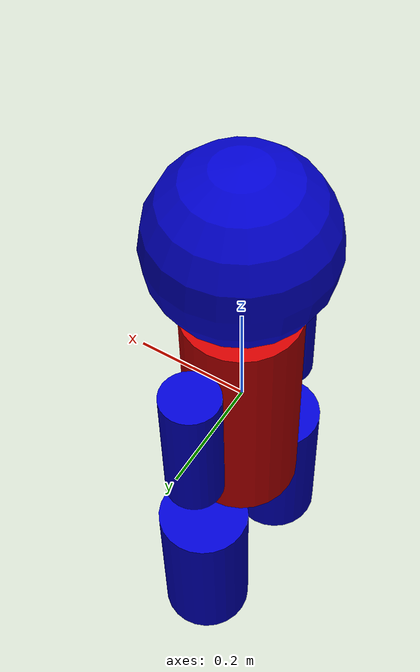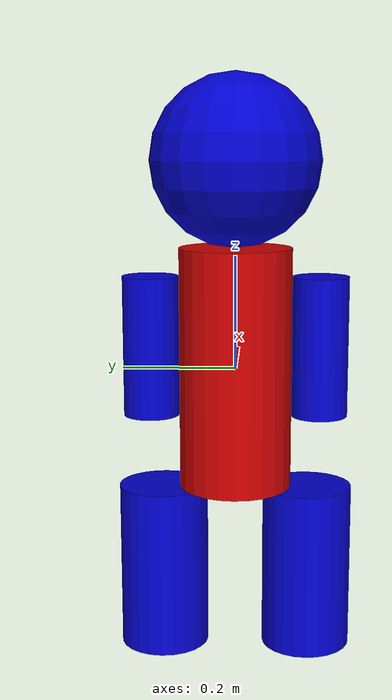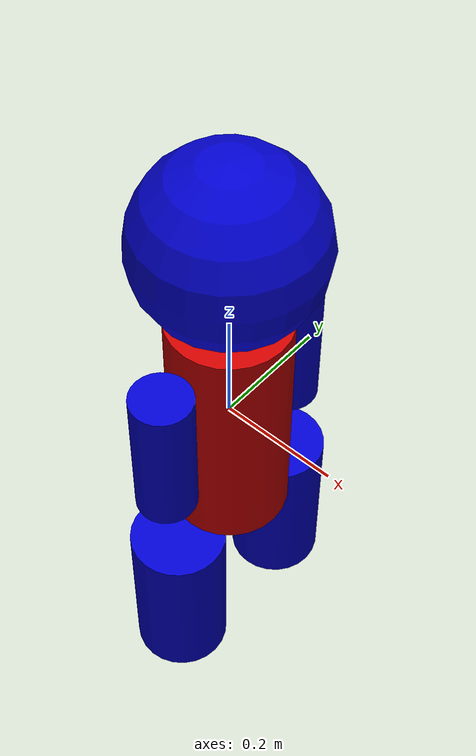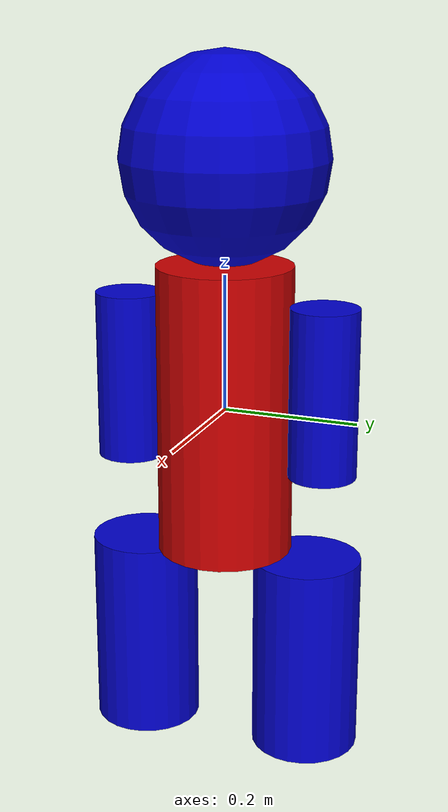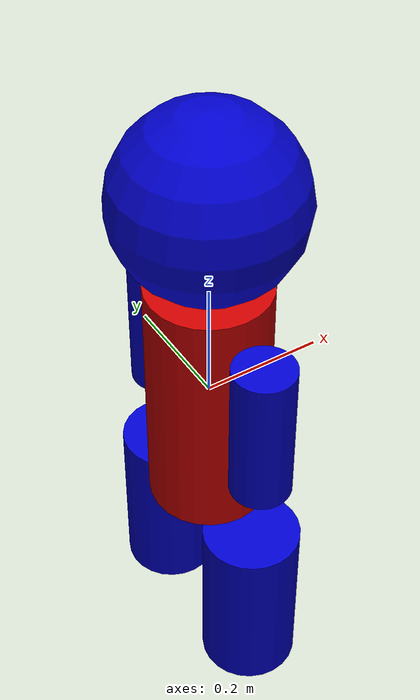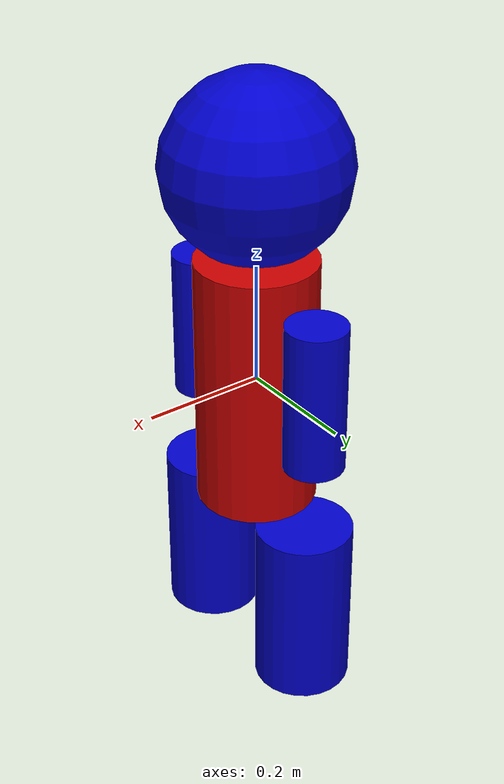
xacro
<?xml version="1.0"?>
<robot name="humanoid" xmlns:xacro="http://www.ros.org/wiki/xacro">

    <xacro:property name="body_length" value="0.430"/>
    <xacro:property name="body_radius" value="0.1"/>
    <xacro:property name="head_radius" value="0.15"/>
    <xacro:property name="arm_length" value="0.25"/>
    <xacro:property name="arm_radius" value="0.05"/>
    <xacro:property name="leg_length" value="0.3"/>
    <xacro:property name="leg_radius" value="0.08"/>

    <link name="base_link">
        <visual>
            <geometry>
                <cylinder length="${body_length}" radius="${body_radius}"/>
            </geometry>
            <material name="red">
                <color rgba="0.8 0 0 1"/>
            </material>
        </visual>
        <collision>
            <geometry>
                <cylinder length="${body_length}" radius="${body_radius}"/>
            </geometry>
        </collision>
    </link>

    <link name="head">
        <visual>
            <geometry>
                <sphere radius="${head_radius}"/>
            </geometry>
            <material name="blue">
                <color rgba="0 0 0.8 1"/>
            </material>
        </visual>
    </link>
    <joint name="head_swivel" type="fixed">
        <parent link="base_link"/>
        <child link="head"/>
        <origin xyz="0 0 ${body_length/2 + head_radius}"/>
    </joint>

    <xacro:macro name="arm" params="arm_name reflect_y">
        <link name="${arm_name}_pivot"/>
        <joint name="${arm_name}_side_to_side" type="revolute">
            <parent link="base_link"/>
            <child link="${arm_name}_pivot"/>
            <origin xyz="0 ${reflect_y * (body_radius + arm_radius)} ${body_length/2 - arm_radius}"/>
            <axis xyz="1 0 0"/>
            <limit lower="0" upper="3.14" effort="10" velocity="1"/>
        </joint>
        <link name="${arm_name}">
            <visual>
                <origin xyz="0 0 -${arm_length/2}"/>
                <geometry>
                    <cylinder length="${arm_length}" radius="${arm_radius}"/>
                </geometry>
                <material name="blue">
                    <color rgba="0 0 0.8 1"/>
                </material>
            </visual>
        </link>
        <joint name="${arm_name}_front_to_back" type="revolute">
            <parent link="${arm_name}_pivot"/>
            <child link="${arm_name}"/>
            <origin xyz="0 0 0"/>
            <axis xyz="0 1 0"/>
            <limit lower="-1.57" upper="1.57" effort="10" velocity="1"/>
        </joint>
    </xacro:macro>

    <xacro:macro name="leg" params="leg_name reflect_y">
        <link name="${leg_name}_pivot"/>
        <joint name="${leg_name}_side_to_side" type="continuous">
            <parent link="base_link"/>
            <child link="${leg_name}_pivot"/>
            <origin xyz="0 ${reflect_y * (body_radius/2 + leg_radius)} -${body_length/2}"/>
            <axis xyz="1 0 0"/>
        </joint>
        <link name="${leg_name}">
            <visual>
                <origin xyz="0 0 -${leg_length/2}"/>
                <geometry>
                    <cylinder length="${leg_length}" radius="${leg_radius}"/>
                </geometry>
                <material name="blue">
                    <color rgba="0 0 0.8 1"/>
                </material>
            </visual>
            <collision>
                <origin xyz="0 0 -${leg_length/2}"/>
                <geometry>
                    <cylinder length="${leg_length}" radius="${leg_radius}"/>
                </geometry>
            </collision>
        </link>
        <joint name="${leg_name}_front_to_back" type="continuous">
            <parent link="${leg_name}_pivot"/>
            <child link="${leg_name}"/>
            <origin xyz="0 0 0"/>
            <axis xyz="0 1 0"/>
        </joint>
    </xacro:macro>

    <xacro:arm arm_name="left_arm" reflect_y="1"/>
    <xacro:arm arm_name="right_arm" reflect_y="-1"/>
    <xacro:leg leg_name="left_leg" reflect_y="1"/>
    <xacro:leg leg_name="right_leg" reflect_y="-1"/>

</robot>
